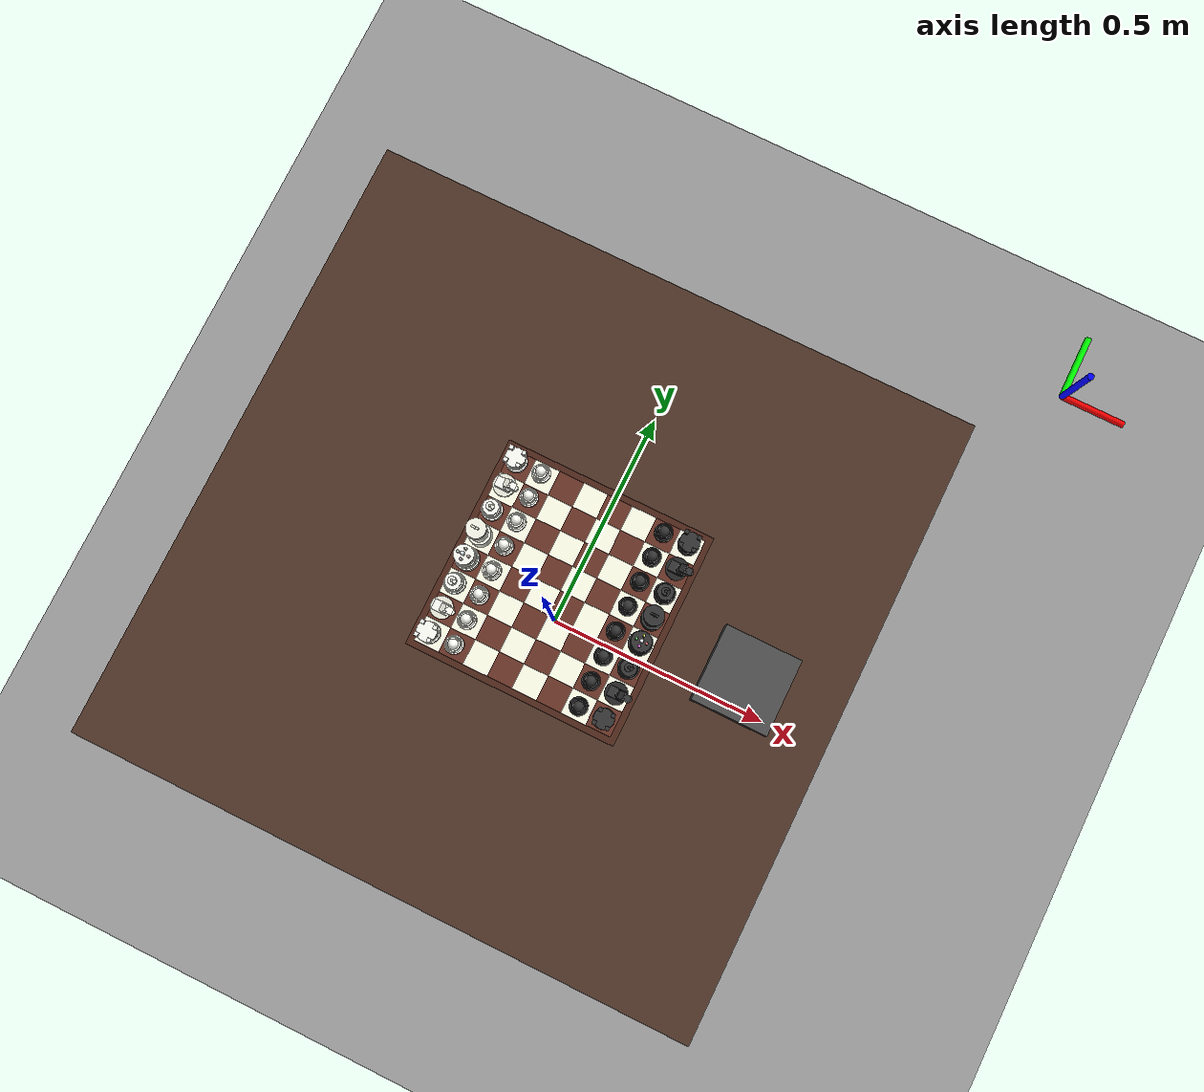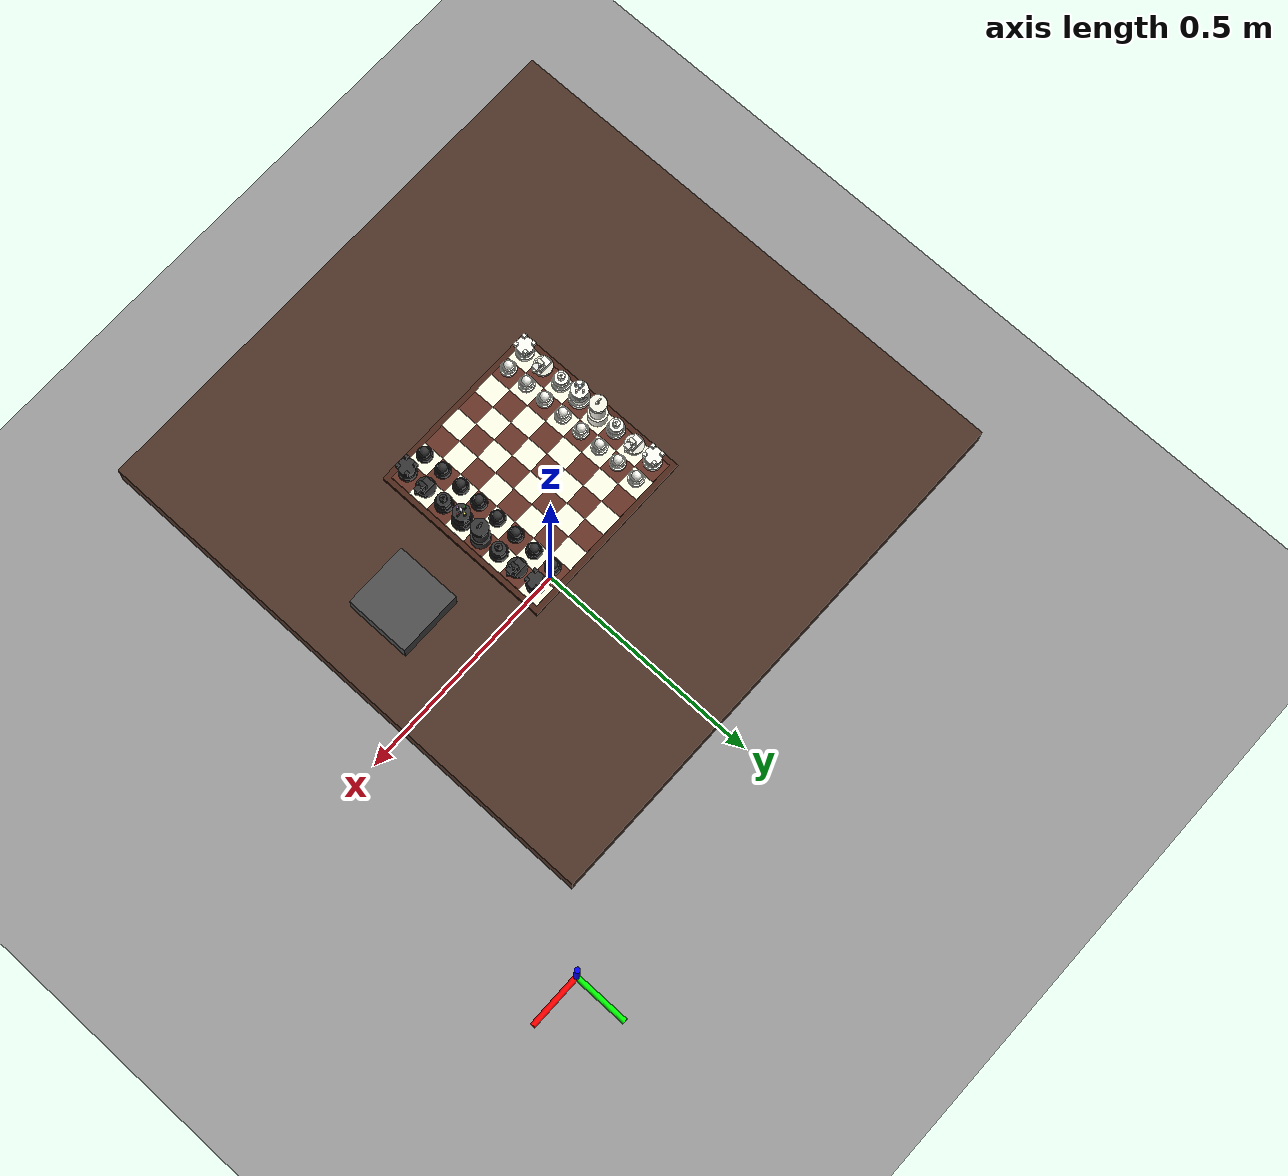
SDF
<?xml version="1.0" ?>
<sdf version="1.6">
  <world name="chess_table_world">

    <!-- Physics settings optimized for robotic manipulation -->
    <physics name="default_physics" default="0" type="ode">
      <gravity>0 0 -9.8066</gravity>
      <ode>
        <solver>
          <type>quick</type>
          <iters>200</iters>
          <sor>1.3</sor>
        </solver>
        <constraints>
          <cfm>0.00001</cfm>
          <erp>0.2</erp>
          <contact_max_correcting_vel>100</contact_max_correcting_vel>
          <contact_surface_layer>0.001</contact_surface_layer>
        </constraints>
      </ode>
      <max_step_size>0.001</max_step_size>
      <real_time_factor>1</real_time_factor>
      <real_time_update_rate>1000</real_time_update_rate>
    </physics>

    <!-- Scene settings -->
    <scene>
      <ambient>0.6 0.6 0.6</ambient>
      <background>0.8 0.8 0.9</background>
      <shadows>true</shadows>
    </scene>

    <!-- Sun light -->
    <light type="directional" name="sun">
      <cast_shadows>true</cast_shadows>
      <pose>0 0 10 0 0 0</pose>
      <diffuse>1.0 1.0 1.0 1</diffuse>
      <specular>0.2 0.2 0.2 1</specular>
      <attenuation>
        <range>1000</range>
        <constant>0.9</constant>
        <linear>0.01</linear>
        <quadratic>0.001</quadratic>
      </attenuation>
      <direction>-0.5 0.1 -0.9</direction>
    </light>

    <!-- Additional task lighting for precise work -->
    <light type="point" name="task_light_1">
      <pose>0.5 0.5 2.0 0 0 0</pose>
      <diffuse>0.8 0.8 0.8 1</diffuse>
      <specular>0.2 0.2 0.2 1</specular>
      <attenuation>
        <range>10</range>
        <constant>0.8</constant>
        <linear>0.01</linear>
        <quadratic>0.001</quadratic>
      </attenuation>
    </light>

    <light type="point" name="task_light_2">
      <pose>-0.5 -0.5 2.0 0 0 0</pose>
      <diffuse>0.8 0.8 0.8 1</diffuse>
      <specular>0.2 0.2 0.2 1</specular>
      <attenuation>
        <range>10</range>
        <constant>0.8</constant>
        <linear>0.01</linear>
        <quadratic>0.001</quadratic>
      </attenuation>
    </light>

    <!-- Ground plane -->
    <model name="ground_plane">
      <static>true</static>
      <link name="link">
        <collision name="collision">
          <geometry>
            <plane>
              <normal>0 0 1</normal>
              <size>20 20</size>
            </plane>
          </geometry>
          <surface>
            <friction>
              <ode>
                <mu>1.0</mu>
                <mu2>1.0</mu2>
              </ode>
            </friction>
          </surface>
        </collision>
        <visual name="visual">
          <geometry>
            <plane>
              <normal>0 0 1</normal>
              <size>20 20</size>
            </plane>
          </geometry>
          <material>
            <ambient>0.5 0.5 0.5 1</ambient>
            <diffuse>0.6 0.6 0.6 1</diffuse>
            <specular>0.1 0.1 0.1 1</specular>
          </material>
        </visual>
      </link>
    </model>

    <!-- Chess/Work Table -->
    <model name="chess_table_with_mount">
      <static>true</static>
      <pose>0 0 0.4 0 0 0</pose>

      <!-- Table top -->
      <link name="table_top">
        <pose>0 0 0.375 0 0 0</pose>
        <collision name="top_collision">
          <geometry>
            <box>
              <size>1.0 1.0 0.05</size>
            </box>
          </geometry>
          <surface>
            <friction>
              <ode>
                <mu>0.8</mu>
                <mu2>0.8</mu2>
              </ode>
            </friction>
          </surface>
        </collision>
        <visual name="top_visual">
          <geometry>
            <box>
              <size>1.0 1.0 0.05</size>
            </box>
          </geometry>
          <material>
            <ambient>0.2 0.15 0.1 1</ambient>
            <diffuse>0.3 0.2 0.15 1</diffuse>
            <specular>0.1 0.05 0.02 1</specular>
          </material>
        </visual>
      </link>

      <!-- Robot mounting platform - positioned for optimal reach -->
      <link name="robot_mount_platform">
        <!-- Position optimized for chess board reach -->
        <pose>0.35 0.0 0.4025 0 0 0</pose>

        <!-- Base mounting plate -->
        <collision name="mount_base_collision">
          <geometry>
            <box>
              <size>0.12 0.12 0.01</size>
            </box>
          </geometry>
          <surface>
            <friction>
              <ode>
                <mu>10.0</mu>
                <mu2>10.0</mu2>
              </ode>
            </friction>
            <contact>
              <ode>
                <soft_cfm>0.00001</soft_cfm>
                <soft_erp>0.2</soft_erp>
                <kp>10000000</kp>
                <kd>1000</kd>
                <max_vel>0.001</max_vel>
                <min_depth>0.0001</min_depth>
              </ode>
            </contact>
          </surface>
        </collision>
        <visual name="mount_base_visual">
          <pose>0 0 0.01 0 0 0</pose>  <!-- Offset downward to extend above -->
          <geometry>
            <box>
              <size>0.12 0.12 0.05</size>
            </box>
          </geometry>
          <material>
            <ambient>0.2 0.2 0.2 1</ambient>
            <diffuse>0.3 0.3 0.3 1</diffuse>
            <specular>0.1 0.1 0.1 1</specular>
          </material>
        </visual>

        <!-- Mounting holes representation -->
        <visual name="mount_hole_1">
          <pose>0.04 0.04 0.0025 0 0 0</pose>
          <geometry>
            <cylinder>
              <radius>0.003</radius>
              <length>0.005</length>
            </cylinder>
          </geometry>
          <material>
            <ambient>0.1 0.1 0.1 1</ambient>
            <diffuse>0.1 0.1 0.1 1</diffuse>
          </material>
        </visual>

        <visual name="mount_hole_2">
          <pose>-0.04 0.04 0.0025 0 0 0</pose>
          <geometry>
            <cylinder>
              <radius>0.003</radius>
              <length>0.005</length>
            </cylinder>
          </geometry>
          <material>
            <ambient>0.1 0.1 0.1 1</ambient>
            <diffuse>0.1 0.1 0.1 1</diffuse>
          </material>
        </visual>

        <visual name="mount_hole_3">
          <pose>0.04 -0.04 0.0025 0 0 0</pose>
          <geometry>
            <cylinder>
              <radius>0.003</radius>
              <length>0.005</length>
            </cylinder>
          </geometry>
          <material>
            <ambient>0.1 0.1 0.1 1</ambient>
            <diffuse>0.1 0.1 0.1 1</diffuse>
          </material>
        </visual>

        <visual name="mount_hole_4">
          <pose>-0.04 -0.04 0.0025 0 0 0</pose>
          <geometry>
            <cylinder>
              <radius>0.003</radius>
              <length>0.005</length>
            </cylinder>
          </geometry>
          <material>
            <ambient>0.1 0.1 0.1 1</ambient>
            <diffuse>0.1 0.1 0.1 1</diffuse>
          </material>
        </visual>
      </link>

      <!-- Table legs -->
      <link name="leg_1">
        <pose>0.4 0.4 0.175 0 0 0</pose>
        <collision name="leg1_collision">
          <geometry>
            <box>
              <size>0.05 0.05 0.35</size>
            </box>
          </geometry>
        </collision>
        <visual name="leg1_visual">
          <geometry>
            <box>
              <size>0.05 0.05 0.35</size>
            </box>
          </geometry>
          <material>
            <ambient>0.15 0.1 0.08 1</ambient>
            <diffuse>0.25 0.15 0.12 1</diffuse>
          </material>
        </visual>
      </link>

      <link name="leg_2">
        <pose>-0.4 0.4 0.175 0 0 0</pose>
        <collision name="leg2_collision">
          <geometry>
            <box>
              <size>0.05 0.05 0.35</size>
            </box>
          </geometry>
        </collision>
        <visual name="leg2_visual">
          <geometry>
            <box>
              <size>0.05 0.05 0.35</size>
            </box>
          </geometry>
          <material>
            <ambient>0.15 0.1 0.08 1</ambient>
            <diffuse>0.25 0.15 0.12 1</diffuse>
          </material>
        </visual>
      </link>

      <link name="leg_3">
        <pose>0.4 -0.4 0.175 0 0 0</pose>
        <collision name="leg3_collision">
          <geometry>
            <box>
              <size>0.05 0.05 0.35</size>
            </box>
          </geometry>
        </collision>
        <visual name="leg3_visual">
          <geometry>
            <box>
              <size>0.05 0.05 0.35</size>
            </box>
          </geometry>
          <material>
            <ambient>0.15 0.1 0.08 1</ambient>
            <diffuse>0.25 0.15 0.12 1</diffuse>
          </material>
        </visual>
      </link>

      <link name="leg_4">
        <pose>-0.4 -0.4 0.175 0 0 0</pose>
        <collision name="leg4_collision">
          <geometry>
            <box>
              <size>0.05 0.05 0.35</size>
            </box>
          </geometry>
        </collision>
        <visual name="leg4_visual">
          <geometry>
            <box>
              <size>0.05 0.05 0.35</size>
            </box>
          </geometry>
          <material>
            <ambient>0.15 0.1 0.08 1</ambient>
            <diffuse>0.25 0.15 0.12 1</diffuse>
          </material>
        </visual>
      </link>

      <!-- Fixed joints to connect everything -->
      <joint name="leg1_joint" type="fixed">
        <parent>table_top</parent>
        <child>leg_1</child>
      </joint>
      <joint name="leg2_joint" type="fixed">
        <parent>table_top</parent>
        <child>leg_2</child>
      </joint>
      <joint name="leg3_joint" type="fixed">
        <parent>table_top</parent>
        <child>leg_3</child>
      </joint>
      <joint name="leg4_joint" type="fixed">
        <parent>table_top</parent>
        <child>leg_4</child>
      </joint>
      <joint name="mount_joint" type="fixed">
        <parent>table_top</parent>
        <child>robot_mount_platform</child>
      </joint>
    </model>

    <!-- Chess Board -->
    <model name="chess_board">
      <static>true</static>
      <pose>0.05 0 0.8005 0 0 0</pose>

      <!-- Board frame -->
      <link name="board_frame">
        <collision name="frame_collision">
          <geometry>
            <box>
              <size>0.34 0.34 0.015</size>
            </box>
          </geometry>
        </collision>
        <visual name="frame_visual">
          <geometry>
            <box>
              <size>0.34 0.34 0.015</size>
            </box>
          </geometry>
          <material>
            <ambient>0.2 0.1 0.05 1</ambient>
            <diffuse>0.3 0.15 0.1 1</diffuse>
            <specular>0.2 0.1 0.05 1</specular>
          </material>
        </visual>
      </link>

      <!-- Rank 1 (a1-h1) -->
      <link name="square_a1">
        <pose>-0.140 -0.140 0.008 0 0 0</pose>
        <visual name="a1_visual">
          <geometry><box><size>0.04 0.04 0.001</size></box></geometry>
          <material><ambient>0.95 0.95 0.85 1</ambient><diffuse>0.98 0.98 0.9 1</diffuse><specular>0.1 0.1 0.1 1</specular></material>
        </visual>
      </link>
      <link name="square_b1">
        <pose>-0.140 -0.100 0.008 0 0 0</pose>
        <visual name="b1_visual">
          <geometry><box><size>0.04 0.04 0.001</size></box></geometry>
          <material><ambient>0.3 0.15 0.1 1</ambient><diffuse>0.4 0.2 0.15 1</diffuse><specular>0.1 0.1 0.1 1</specular></material>
        </visual>
      </link>
      <link name="square_c1">
        <pose>-0.140 -0.060 0.008 0 0 0</pose>
        <visual name="c1_visual">
          <geometry><box><size>0.04 0.04 0.001</size></box></geometry>
          <material><ambient>0.95 0.95 0.85 1</ambient><diffuse>0.98 0.98 0.9 1</diffuse><specular>0.1 0.1 0.1 1</specular></material>
        </visual>
      </link>
      <link name="square_d1">
        <pose>-0.140 -0.020 0.008 0 0 0</pose>
        <visual name="d1_visual">
          <geometry><box><size>0.04 0.04 0.001</size></box></geometry>
          <material><ambient>0.3 0.15 0.1 1</ambient><diffuse>0.4 0.2 0.15 1</diffuse><specular>0.1 0.1 0.1 1</specular></material>
        </visual>
      </link>
      <link name="square_e1">
        <pose>-0.140 0.020 0.008 0 0 0</pose>
        <visual name="e1_visual">
          <geometry><box><size>0.04 0.04 0.001</size></box></geometry>
          <material><ambient>0.95 0.95 0.85 1</ambient><diffuse>0.98 0.98 0.9 1</diffuse><specular>0.1 0.1 0.1 1</specular></material>
        </visual>
      </link>
      <link name="square_f1">
        <pose>-0.140 0.060 0.008 0 0 0</pose>
        <visual name="f1_visual">
          <geometry><box><size>0.04 0.04 0.001</size></box></geometry>
          <material><ambient>0.3 0.15 0.1 1</ambient><diffuse>0.4 0.2 0.15 1</diffuse><specular>0.1 0.1 0.1 1</specular></material>
        </visual>
      </link>
      <link name="square_g1">
        <pose>-0.140 0.100 0.008 0 0 0</pose>
        <visual name="g1_visual">
          <geometry><box><size>0.04 0.04 0.001</size></box></geometry>
          <material><ambient>0.95 0.95 0.85 1</ambient><diffuse>0.98 0.98 0.9 1</diffuse><specular>0.1 0.1 0.1 1</specular></material>
        </visual>
      </link>
      <link name="square_h1">
        <pose>-0.140 0.140 0.008 0 0 0</pose>
        <visual name="h1_visual">
          <geometry><box><size>0.04 0.04 0.001</size></box></geometry>
          <material><ambient>0.3 0.15 0.1 1</ambient><diffuse>0.4 0.2 0.15 1</diffuse><specular>0.1 0.1 0.1 1</specular></material>
        </visual>
      </link>

      <!-- Rank 2 (a2-h2) -->
      <link name="square_a2">
        <pose>-0.100 -0.140 0.008 0 0 0</pose>
        <visual name="a2_visual">
          <geometry><box><size>0.04 0.04 0.001</size></box></geometry>
          <material><ambient>0.3 0.15 0.1 1</ambient><diffuse>0.4 0.2 0.15 1</diffuse><specular>0.1 0.1 0.1 1</specular></material>
        </visual>
      </link>
      <link name="square_b2">
        <pose>-0.100 -0.100 0.008 0 0 0</pose>
        <visual name="b2_visual">
          <geometry><box><size>0.04 0.04 0.001</size></box></geometry>
          <material><ambient>0.95 0.95 0.85 1</ambient><diffuse>0.98 0.98 0.9 1</diffuse><specular>0.1 0.1 0.1 1</specular></material>
        </visual>
      </link>
      <link name="square_c2">
        <pose>-0.100 -0.060 0.008 0 0 0</pose>
        <visual name="c2_visual">
          <geometry><box><size>0.04 0.04 0.001</size></box></geometry>
          <material><ambient>0.3 0.15 0.1 1</ambient><diffuse>0.4 0.2 0.15 1</diffuse><specular>0.1 0.1 0.1 1</specular></material>
        </visual>
      </link>
      <link name="square_d2">
        <pose>-0.100 -0.020 0.008 0 0 0</pose>
        <visual name="d2_visual">
          <geometry><box><size>0.04 0.04 0.001</size></box></geometry>
          <material><ambient>0.95 0.95 0.85 1</ambient><diffuse>0.98 0.98 0.9 1</diffuse><specular>0.1 0.1 0.1 1</specular></material>
        </visual>
      </link>
      <link name="square_e2">
        <pose>-0.100 0.020 0.008 0 0 0</pose>
        <visual name="e2_visual">
          <geometry><box><size>0.04 0.04 0.001</size></box></geometry>
          <material><ambient>0.3 0.15 0.1 1</ambient><diffuse>0.4 0.2 0.15 1</diffuse><specular>0.1 0.1 0.1 1</specular></material>
        </visual>
      </link>
      <link name="square_f2">
        <pose>-0.100 0.060 0.008 0 0 0</pose>
        <visual name="f2_visual">
          <geometry><box><size>0.04 0.04 0.001</size></box></geometry>
          <material><ambient>0.95 0.95 0.85 1</ambient><diffuse>0.98 0.98 0.9 1</diffuse><specular>0.1 0.1 0.1 1</specular></material>
        </visual>
      </link>
      <link name="square_g2">
        <pose>-0.100 0.100 0.008 0 0 0</pose>
        <visual name="g2_visual">
          <geometry><box><size>0.04 0.04 0.001</size></box></geometry>
          <material><ambient>0.3 0.15 0.1 1</ambient><diffuse>0.4 0.2 0.15 1</diffuse><specular>0.1 0.1 0.1 1</specular></material>
        </visual>
      </link>
      <link name="square_h2">
        <pose>-0.100 0.140 0.008 0 0 0</pose>
        <visual name="h2_visual">
          <geometry><box><size>0.04 0.04 0.001</size></box></geometry>
          <material><ambient>0.95 0.95 0.85 1</ambient><diffuse>0.98 0.98 0.9 1</diffuse><specular>0.1 0.1 0.1 1</specular></material>
        </visual>
      </link>

      <!-- Rank 3 (a3-h3) -->
      <link name="square_a3">
        <pose>-0.060 -0.140 0.008 0 0 0</pose>
        <visual name="a3_visual">
          <geometry><box><size>0.04 0.04 0.001</size></box></geometry>
          <material><ambient>0.95 0.95 0.85 1</ambient><diffuse>0.98 0.98 0.9 1</diffuse><specular>0.1 0.1 0.1 1</specular></material>
        </visual>
      </link>
      <link name="square_b3">
        <pose>-0.060 -0.100 0.008 0 0 0</pose>
        <visual name="b3_visual">
          <geometry><box><size>0.04 0.04 0.001</size></box></geometry>
          <material><ambient>0.3 0.15 0.1 1</ambient><diffuse>0.4 0.2 0.15 1</diffuse><specular>0.1 0.1 0.1 1</specular></material>
        </visual>
      </link>
      <link name="square_c3">
        <pose>-0.060 -0.060 0.008 0 0 0</pose>
        <visual name="c3_visual">
          <geometry><box><size>0.04 0.04 0.001</size></box></geometry>
          <material><ambient>0.95 0.95 0.85 1</ambient><diffuse>0.98 0.98 0.9 1</diffuse><specular>0.1 0.1 0.1 1</specular></material>
        </visual>
      </link>
      <link name="square_d3">
        <pose>-0.060 -0.020 0.008 0 0 0</pose>
        <visual name="d3_visual">
          <geometry><box><size>0.04 0.04 0.001</size></box></geometry>
          <material><ambient>0.3 0.15 0.1 1</ambient><diffuse>0.4 0.2 0.15 1</diffuse><specular>0.1 0.1 0.1 1</specular></material>
        </visual>
      </link>
      <link name="square_e3">
        <pose>-0.060 0.020 0.008 0 0 0</pose>
        <visual name="e3_visual">
          <geometry><box><size>0.04 0.04 0.001</size></box></geometry>
          <material><ambient>0.95 0.95 0.85 1</ambient><diffuse>0.98 0.98 0.9 1</diffuse><specular>0.1 0.1 0.1 1</specular></material>
        </visual>
      </link>
      <link name="square_f3">
        <pose>-0.060 0.060 0.008 0 0 0</pose>
        <visual name="f3_visual">
          <geometry><box><size>0.04 0.04 0.001</size></box></geometry>
          <material><ambient>0.3 0.15 0.1 1</ambient><diffuse>0.4 0.2 0.15 1</diffuse><specular>0.1 0.1 0.1 1</specular></material>
        </visual>
      </link>
      <link name="square_g3">
        <pose>-0.060 0.100 0.008 0 0 0</pose>
        <visual name="g3_visual">
          <geometry><box><size>0.04 0.04 0.001</size></box></geometry>
          <material><ambient>0.95 0.95 0.85 1</ambient><diffuse>0.98 0.98 0.9 1</diffuse><specular>0.1 0.1 0.1 1</specular></material>
        </visual>
      </link>
      <link name="square_h3">
        <pose>-0.060 0.140 0.008 0 0 0</pose>
        <visual name="h3_visual">
          <geometry><box><size>0.04 0.04 0.001</size></box></geometry>
          <material><ambient>0.3 0.15 0.1 1</ambient><diffuse>0.4 0.2 0.15 1</diffuse><specular>0.1 0.1 0.1 1</specular></material>
        </visual>
      </link>

      <!-- Rank 4 (a4-h4) -->
      <link name="square_a4">
        <pose>-0.020 -0.140 0.008 0 0 0</pose>
        <visual name="a4_visual">
          <geometry><box><size>0.04 0.04 0.001</size></box></geometry>
          <material><ambient>0.3 0.15 0.1 1</ambient><diffuse>0.4 0.2 0.15 1</diffuse><specular>0.1 0.1 0.1 1</specular></material>
        </visual>
      </link>
      <link name="square_b4">
        <pose>-0.020 -0.100 0.008 0 0 0</pose>
        <visual name="b4_visual">
          <geometry><box><size>0.04 0.04 0.001</size></box></geometry>
          <material><ambient>0.95 0.95 0.85 1</ambient><diffuse>0.98 0.98 0.9 1</diffuse><specular>0.1 0.1 0.1 1</specular></material>
        </visual>
      </link>
      <link name="square_c4">
        <pose>-0.020 -0.060 0.008 0 0 0</pose>
        <visual name="c4_visual">
          <geometry><box><size>0.04 0.04 0.001</size></box></geometry>
          <material><ambient>0.3 0.15 0.1 1</ambient><diffuse>0.4 0.2 0.15 1</diffuse><specular>0.1 0.1 0.1 1</specular></material>
        </visual>
      </link>
      <link name="square_d4">
        <pose>-0.020 -0.020 0.008 0 0 0</pose>
        <visual name="d4_visual">
          <geometry><box><size>0.04 0.04 0.001</size></box></geometry>
          <material><ambient>0.95 0.95 0.85 1</ambient><diffuse>0.98 0.98 0.9 1</diffuse><specular>0.1 0.1 0.1 1</specular></material>
        </visual>
      </link>
      <link name="square_e4">
        <pose>-0.020 0.020 0.008 0 0 0</pose>
        <visual name="e4_visual">
          <geometry><box><size>0.04 0.04 0.001</size></box></geometry>
          <material><ambient>0.3 0.15 0.1 1</ambient><diffuse>0.4 0.2 0.15 1</diffuse><specular>0.1 0.1 0.1 1</specular></material>
        </visual>
      </link>
      <link name="square_f4">
        <pose>-0.020 0.060 0.008 0 0 0</pose>
        <visual name="f4_visual">
          <geometry><box><size>0.04 0.04 0.001</size></box></geometry>
          <material><ambient>0.95 0.95 0.85 1</ambient><diffuse>0.98 0.98 0.9 1</diffuse><specular>0.1 0.1 0.1 1</specular></material>
        </visual>
      </link>
      <link name="square_g4">
        <pose>-0.020 0.100 0.008 0 0 0</pose>
        <visual name="g4_visual">
          <geometry><box><size>0.04 0.04 0.001</size></box></geometry>
          <material><ambient>0.3 0.15 0.1 1</ambient><diffuse>0.4 0.2 0.15 1</diffuse><specular>0.1 0.1 0.1 1</specular></material>
        </visual>
      </link>
      <link name="square_h4">
        <pose>-0.020 0.140 0.008 0 0 0</pose>
        <visual name="h4_visual">
          <geometry><box><size>0.04 0.04 0.001</size></box></geometry>
          <material><ambient>0.95 0.95 0.85 1</ambient><diffuse>0.98 0.98 0.9 1</diffuse><specular>0.1 0.1 0.1 1</specular></material>
        </visual>
      </link>

      <!-- Rank 5 (a5-h5) -->
      <link name="square_a5">
        <pose>0.020 -0.140 0.008 0 0 0</pose>
        <visual name="a5_visual">
          <geometry><box><size>0.04 0.04 0.001</size></box></geometry>
          <material><ambient>0.95 0.95 0.85 1</ambient><diffuse>0.98 0.98 0.9 1</diffuse><specular>0.1 0.1 0.1 1</specular></material>
        </visual>
      </link>
      <link name="square_b5">
        <pose>0.020 -0.100 0.008 0 0 0</pose>
        <visual name="b5_visual">
          <geometry><box><size>0.04 0.04 0.001</size></box></geometry>
          <material><ambient>0.3 0.15 0.1 1</ambient><diffuse>0.4 0.2 0.15 1</diffuse><specular>0.1 0.1 0.1 1</specular></material>
        </visual>
      </link>
      <link name="square_c5">
        <pose>0.020 -0.060 0.008 0 0 0</pose>
        <visual name="c5_visual">
          <geometry><box><size>0.04 0.04 0.001</size></box></geometry>
          <material><ambient>0.95 0.95 0.85 1</ambient><diffuse>0.98 0.98 0.9 1</diffuse><specular>0.1 0.1 0.1 1</specular></material>
        </visual>
      </link>
      <link name="square_d5">
        <pose>0.020 -0.020 0.008 0 0 0</pose>
        <visual name="d5_visual">
          <geometry><box><size>0.04 0.04 0.001</size></box></geometry>
          <material><ambient>0.3 0.15 0.1 1</ambient><diffuse>0.4 0.2 0.15 1</diffuse><specular>0.1 0.1 0.1 1</specular></material>
        </visual>
      </link>
      <link name="square_e5">
        <pose>0.020 0.020 0.008 0 0 0</pose>
        <visual name="e5_visual">
          <geometry><box><size>0.04 0.04 0.001</size></box></geometry>
          <material><ambient>0.95 0.95 0.85 1</ambient><diffuse>0.98 0.98 0.9 1</diffuse><specular>0.1 0.1 0.1 1</specular></material>
        </visual>
      </link>
      <link name="square_f5">
        <pose>0.020 0.060 0.008 0 0 0</pose>
        <visual name="f5_visual">
          <geometry><box><size>0.04 0.04 0.001</size></box></geometry>
          <material><ambient>0.3 0.15 0.1 1</ambient><diffuse>0.4 0.2 0.15 1</diffuse><specular>0.1 0.1 0.1 1</specular></material>
        </visual>
      </link>
      <link name="square_g5">
        <pose>0.020 0.100 0.008 0 0 0</pose>
        <visual name="g5_visual">
          <geometry><box><size>0.04 0.04 0.001</size></box></geometry>
          <material><ambient>0.95 0.95 0.85 1</ambient><diffuse>0.98 0.98 0.9 1</diffuse><specular>0.1 0.1 0.1 1</specular></material>
        </visual>
      </link>
      <link name="square_h5">
        <pose>0.020 0.140 0.008 0 0 0</pose>
        <visual name="h5_visual">
          <geometry><box><size>0.04 0.04 0.001</size></box></geometry>
          <material><ambient>0.3 0.15 0.1 1</ambient><diffuse>0.4 0.2 0.15 1</diffuse><specular>0.1 0.1 0.1 1</specular></material>
        </visual>
      </link>

      <!-- Rank 6 (a6-h6) -->
      <link name="square_a6">
        <pose>0.060 -0.140 0.008 0 0 0</pose>
        <visual name="a6_visual">
          <geometry><box><size>0.04 0.04 0.001</size></box></geometry>
          <material><ambient>0.3 0.15 0.1 1</ambient><diffuse>0.4 0.2 0.15 1</diffuse><specular>0.1 0.1 0.1 1</specular></material>
        </visual>
      </link>
      <link name="square_b6">
        <pose>0.060 -0.100 0.008 0 0 0</pose>
        <visual name="b6_visual">
          <geometry><box><size>0.04 0.04 0.001</size></box></geometry>
          <material><ambient>0.95 0.95 0.85 1</ambient><diffuse>0.98 0.98 0.9 1</diffuse><specular>0.1 0.1 0.1 1</specular></material>
        </visual>
      </link>
      <link name="square_c6">
        <pose>0.060 -0.060 0.008 0 0 0</pose>
        <visual name="c6_visual">
          <geometry><box><size>0.04 0.04 0.001</size></box></geometry>
          <material><ambient>0.3 0.15 0.1 1</ambient><diffuse>0.4 0.2 0.15 1</diffuse><specular>0.1 0.1 0.1 1</specular></material>
        </visual>
      </link>
      <link name="square_d6">
        <pose>0.060 -0.020 0.008 0 0 0</pose>
        <visual name="d6_visual">
          <geometry><box><size>0.04 0.04 0.001</size></box></geometry>
          <material><ambient>0.95 0.95 0.85 1</ambient><diffuse>0.98 0.98 0.9 1</diffuse><specular>0.1 0.1 0.1 1</specular></material>
        </visual>
      </link>
      <link name="square_e6">
        <pose>0.060 0.020 0.008 0 0 0</pose>
        <visual name="e6_visual">
          <geometry><box><size>0.04 0.04 0.001</size></box></geometry>
          <material><ambient>0.3 0.15 0.1 1</ambient><diffuse>0.4 0.2 0.15 1</diffuse><specular>0.1 0.1 0.1 1</specular></material>
        </visual>
      </link>
      <link name="square_f6">
        <pose>0.060 0.060 0.008 0 0 0</pose>
        <visual name="f6_visual">
          <geometry><box><size>0.04 0.04 0.001</size></box></geometry>
          <material><ambient>0.95 0.95 0.85 1</ambient><diffuse>0.98 0.98 0.9 1</diffuse><specular>0.1 0.1 0.1 1</specular></material>
        </visual>
      </link>
      <link name="square_g6">
        <pose>0.060 0.100 0.008 0 0 0</pose>
        <visual name="g6_visual">
          <geometry><box><size>0.04 0.04 0.001</size></box></geometry>
          <material><ambient>0.3 0.15 0.1 1</ambient><diffuse>0.4 0.2 0.15 1</diffuse><specular>0.1 0.1 0.1 1</specular></material>
        </visual>
      </link>
      <link name="square_h6">
        <pose>0.060 0.140 0.008 0 0 0</pose>
        <visual name="h6_visual">
          <geometry><box><size>0.04 0.04 0.001</size></box></geometry>
          <material><ambient>0.95 0.95 0.85 1</ambient><diffuse>0.98 0.98 0.9 1</diffuse><specular>0.1 0.1 0.1 1</specular></material>
        </visual>
      </link>

      <!-- Rank 7 (a7-h7) -->
      <link name="square_a7">
        <pose>0.100 -0.140 0.008 0 0 0</pose>
        <visual name="a7_visual">
          <geometry><box><size>0.04 0.04 0.001</size></box></geometry>
          <material><ambient>0.95 0.95 0.85 1</ambient><diffuse>0.98 0.98 0.9 1</diffuse><specular>0.1 0.1 0.1 1</specular></material>
        </visual>
      </link>
      <link name="square_b7">
        <pose>0.100 -0.100 0.008 0 0 0</pose>
        <visual name="b7_visual">
          <geometry><box><size>0.04 0.04 0.001</size></box></geometry>
          <material><ambient>0.3 0.15 0.1 1</ambient><diffuse>0.4 0.2 0.15 1</diffuse><specular>0.1 0.1 0.1 1</specular></material>
        </visual>
      </link>
      <link name="square_c7">
        <pose>0.100 -0.060 0.008 0 0 0</pose>
        <visual name="c7_visual">
          <geometry><box><size>0.04 0.04 0.001</size></box></geometry>
          <material><ambient>0.95 0.95 0.85 1</ambient><diffuse>0.98 0.98 0.9 1</diffuse><specular>0.1 0.1 0.1 1</specular></material>
        </visual>
      </link>
      <link name="square_d7">
        <pose>0.100 -0.020 0.008 0 0 0</pose>
        <visual name="d7_visual">
          <geometry><box><size>0.04 0.04 0.001</size></box></geometry>
          <material><ambient>0.3 0.15 0.1 1</ambient><diffuse>0.4 0.2 0.15 1</diffuse><specular>0.1 0.1 0.1 1</specular></material>
        </visual>
      </link>
      <link name="square_e7">
        <pose>0.100 0.020 0.008 0 0 0</pose>
        <visual name="e7_visual">
          <geometry><box><size>0.04 0.04 0.001</size></box></geometry>
          <material><ambient>0.95 0.95 0.85 1</ambient><diffuse>0.98 0.98 0.9 1</diffuse><specular>0.1 0.1 0.1 1</specular></material>
        </visual>
      </link>
      <link name="square_f7">
        <pose>0.100 0.060 0.008 0 0 0</pose>
        <visual name="f7_visual">
          <geometry><box><size>0.04 0.04 0.001</size></box></geometry>
          <material><ambient>0.3 0.15 0.1 1</ambient><diffuse>0.4 0.2 0.15 1</diffuse><specular>0.1 0.1 0.1 1</specular></material>
        </visual>
      </link>
      <link name="square_g7">
        <pose>0.100 0.100 0.008 0 0 0</pose>
        <visual name="g7_visual">
          <geometry><box><size>0.04 0.04 0.001</size></box></geometry>
          <material><ambient>0.95 0.95 0.85 1</ambient><diffuse>0.98 0.98 0.9 1</diffuse><specular>0.1 0.1 0.1 1</specular></material>
        </visual>
      </link>
      <link name="square_h7">
        <pose>0.100 0.140 0.008 0 0 0</pose>
        <visual name="h7_visual">
          <geometry><box><size>0.04 0.04 0.001</size></box></geometry>
          <material><ambient>0.3 0.15 0.1 1</ambient><diffuse>0.4 0.2 0.15 1</diffuse><specular>0.1 0.1 0.1 1</specular></material>
        </visual>
      </link>

      <!-- Rank 8 (a8-h8) -->
      <link name="square_a8">
        <pose>0.140 -0.140 0.008 0 0 0</pose>
        <visual name="a8_visual">
          <geometry><box><size>0.04 0.04 0.001</size></box></geometry>
          <material><ambient>0.3 0.15 0.1 1</ambient><diffuse>0.4 0.2 0.15 1</diffuse><specular>0.1 0.1 0.1 1</specular></material>
        </visual>
      </link>
      <link name="square_b8">
        <pose>0.140 -0.100 0.008 0 0 0</pose>
        <visual name="b8_visual">
          <geometry><box><size>0.04 0.04 0.001</size></box></geometry>
          <material><ambient>0.95 0.95 0.85 1</ambient><diffuse>0.98 0.98 0.9 1</diffuse><specular>0.1 0.1 0.1 1</specular></material>
        </visual>
      </link>
      <link name="square_c8">
        <pose>0.140 -0.060 0.008 0 0 0</pose>
        <visual name="c8_visual">
          <geometry><box><size>0.04 0.04 0.001</size></box></geometry>
          <material><ambient>0.3 0.15 0.1 1</ambient><diffuse>0.4 0.2 0.15 1</diffuse><specular>0.1 0.1 0.1 1</specular></material>
        </visual>
      </link>
      <link name="square_d8">
        <pose>0.140 -0.020 0.008 0 0 0</pose>
        <visual name="d8_visual">
          <geometry><box><size>0.04 0.04 0.001</size></box></geometry>
          <material><ambient>0.95 0.95 0.85 1</ambient><diffuse>0.98 0.98 0.9 1</diffuse><specular>0.1 0.1 0.1 1</specular></material>
        </visual>
      </link>
      <link name="square_e8">
        <pose>0.140 0.020 0.008 0 0 0</pose>
        <visual name="e8_visual">
          <geometry><box><size>0.04 0.04 0.001</size></box></geometry>
          <material><ambient>0.3 0.15 0.1 1</ambient><diffuse>0.4 0.2 0.15 1</diffuse><specular>0.1 0.1 0.1 1</specular></material>
        </visual>
      </link>
      <link name="square_f8">
        <pose>0.140 0.060 0.008 0 0 0</pose>
        <visual name="f8_visual">
          <geometry><box><size>0.04 0.04 0.001</size></box></geometry>
          <material><ambient>0.95 0.95 0.85 1</ambient><diffuse>0.98 0.98 0.9 1</diffuse><specular>0.1 0.1 0.1 1</specular></material>
        </visual>
      </link>
      <link name="square_g8">
        <pose>0.140 0.100 0.008 0 0 0</pose>
        <visual name="g8_visual">
          <geometry><box><size>0.04 0.04 0.001</size></box></geometry>
          <material><ambient>0.3 0.15 0.1 1</ambient><diffuse>0.4 0.2 0.15 1</diffuse><specular>0.1 0.1 0.1 1</specular></material>
        </visual>
      </link>
      <link name="square_h8">
        <pose>0.140 0.140 0.008 0 0 0</pose>
        <visual name="h8_visual">
          <geometry><box><size>0.04 0.04 0.001</size></box></geometry>
          <material><ambient>0.95 0.95 0.85 1</ambient><diffuse>0.98 0.98 0.9 1</diffuse><specular>0.1 0.1 0.1 1</specular></material>
        </visual>
      </link>
    </model>

    <!-- White Pawns (row 2) -->
    <include>
      <uri>model://chess_pawn_white</uri>
      <pose>-0.05 -0.14 0.8315 0 0 0</pose>
      <name>white_pawn_a2</name>
    </include>
    <include>
      <uri>model://chess_pawn_white</uri>
      <pose>-0.05 -0.10 0.8315 0 0 0</pose>
      <name>white_pawn_b2</name>
    </include>
    <include>
      <uri>model://chess_pawn_white</uri>
      <pose>-0.05 -0.06 0.8315 0 0 0</pose>
      <name>white_pawn_c2</name>
    </include>
    <include>
      <uri>model://chess_pawn_white</uri>
      <pose>-0.05 -0.02 0.8315 0 0 0</pose>
      <name>white_pawn_d2</name>
    </include>
    <include>
      <uri>model://chess_pawn_white</uri>
      <pose>-0.05 0.02 0.8315 0 0 0</pose>
      <name>white_pawn_e2</name>
    </include>
    <include>
      <uri>model://chess_pawn_white</uri>
      <pose>-0.05 0.06 0.8315 0 0 0</pose>
      <name>white_pawn_f2</name>
    </include>
    <include>
      <uri>model://chess_pawn_white</uri>
      <pose>-0.05 0.10 0.8315 0 0 0</pose>
      <name>white_pawn_g2</name>
    </include>
    <include>
      <uri>model://chess_pawn_white</uri>
      <pose>-0.05 0.14 0.8315 0 0 0</pose>
      <name>white_pawn_h2</name>
    </include>

    <!-- White Back Pieces (row 1) -->
    <include>
      <uri>model://chess_rook_white</uri>
      <pose>-0.09 -0.14 0.8315 0 0 0</pose>
      <name>white_rook_a1</name>
    </include>
    <include>
      <uri>model://chess_knight_white</uri>
      <pose>-0.09 -0.10 0.8315 0 0 0</pose>
      <name>white_knight_b1</name>
    </include>
    <include>
      <uri>model://chess_bishop_white</uri>
      <pose>-0.09 -0.06 0.8315 0 0 0</pose>
      <name>white_bishop_c1</name>
    </include>
    <include>
      <uri>model://chess_queen_white</uri>
      <pose>-0.09 -0.02 0.8315 0 0 0</pose>
      <name>white_queen_d1</name>
    </include>
    <include>
      <uri>model://chess_king_white</uri>
      <pose>-0.09 0.02 0.8315 0 0 0</pose>
      <name>white_king_e1</name>
    </include>
    <include>
      <uri>model://chess_bishop_white</uri>
      <pose>-0.09 0.06 0.8315 0 0 0</pose>
      <name>white_bishop_f1</name>
    </include>
    <include>
      <uri>model://chess_knight_white</uri>
      <pose>-0.09 0.10 0.8315 0 0 0</pose>
      <name>white_knight_g1</name>
    </include>
    <include>
      <uri>model://chess_rook_white</uri>
      <pose>-0.09 0.14 0.8315 0 0 0</pose>
      <name>white_rook_h1</name>
    </include>

    <!-- Black Pawns (row 7) -->
    <include>
      <uri>model://chess_pawn_black</uri>
      <pose>0.15 -0.14 0.8315 0 0 0</pose>
      <name>black_pawn_a7</name>
    </include>
    <include>
      <uri>model://chess_pawn_black</uri>
      <pose>0.15 -0.10 0.8315 0 0 0</pose>
      <name>black_pawn_b7</name>
    </include>
    <include>
      <uri>model://chess_pawn_black</uri>
      <pose>0.15 -0.06 0.8315 0 0 0</pose>
      <name>black_pawn_c7</name>
    </include>
    <include>
      <uri>model://chess_pawn_black</uri>
      <pose>0.15 -0.02 0.8315 0 0 0</pose>
      <name>black_pawn_d7</name>
    </include>
    <include>
      <uri>model://chess_pawn_black</uri>
      <pose>0.15 0.02 0.8315 0 0 0</pose>
      <name>black_pawn_e7</name>
    </include>
    <include>
      <uri>model://chess_pawn_black</uri>
      <pose>0.15 0.06 0.8315 0 0 0</pose>
      <name>black_pawn_f7</name>
    </include>
    <include>
      <uri>model://chess_pawn_black</uri>
      <pose>0.15 0.10 0.8315 0 0 0</pose>
      <name>black_pawn_g7</name>
    </include>
    <include>
      <uri>model://chess_pawn_black</uri>
      <pose>0.15 0.14 0.8315 0 0 0</pose>
      <name>black_pawn_h7</name>
    </include>

    <!-- Black Back Pieces (row 8) -->
    <include>
      <uri>model://chess_rook_black</uri>
      <pose>0.19 -0.14 0.8315 0 0 0</pose>
      <name>black_rook_a8</name>
    </include>
    <include>
      <uri>model://chess_knight_black</uri>
      <pose>0.19 -0.10 0.8315 0 0 0</pose>
      <name>black_knight_b8</name>
    </include>
    <include>
      <uri>model://chess_bishop_black</uri>
      <pose>0.19 -0.06 0.8315 0 0 0</pose>
      <name>black_bishop_c8</name>
    </include>
    <include>
      <uri>model://chess_queen_black</uri>
      <pose>0.19 -0.02 0.8315 0 0 0</pose>
      <name>black_queen_d8</name>
    </include>
    <include>
      <uri>model://chess_king_black</uri>
      <pose>0.19 0.02 0.8315 0 0 0</pose>
      <name>black_king_e8</name>
    </include>
    <include>
      <uri>model://chess_bishop_black</uri>
      <pose>0.19 0.06 0.8315 0 0 0</pose>
      <name>black_bishop_f8</name>
    </include>
    <include>
      <uri>model://chess_knight_black</uri>
      <pose>0.19 0.10 0.8315 0 0 0</pose>
      <name>black_knight_g8</name>
    </include>
    <include>
      <uri>model://chess_rook_black</uri>
      <pose>0.19 0.14 0.8315 0 0 0</pose>
      <name>black_rook_h8</name>
    </include>

    <!-- Coordinate frame markers -->
    <model name="coordinate_markers">
      <static>true</static>
      <pose>0.6 0.6 0.8 0 0 0</pose>

      <link name="x_axis">
        <visual name="x_visual">
          <geometry>
            <cylinder>
              <radius>0.005</radius>
              <length>0.1</length>
            </cylinder>
          </geometry>
          <pose>0.05 0 0 0 1.5708 0</pose>
          <material>
            <ambient>1 0 0 1</ambient>
            <diffuse>1 0 0 1</diffuse>
          </material>
        </visual>
      </link>

      <link name="y_axis">
        <visual name="y_visual">
          <geometry>
            <cylinder>
              <radius>0.005</radius>
              <length>0.1</length>
            </cylinder>
          </geometry>
          <pose>0 0.05 0 -1.5708 0 0</pose>
          <material>
            <ambient>0 1 0 1</ambient>
            <diffuse>0 1 0 1</diffuse>
          </material>
        </visual>
      </link>

      <link name="z_axis">
        <visual name="z_visual">
          <geometry>
            <cylinder>
              <radius>0.005</radius>
              <length>0.1</length>
            </cylinder>
          </geometry>
          <pose>0 0 0.05 0 0 0</pose>
          <material>
            <ambient>0 0 1 1</ambient>
            <diffuse>0 0 1 1</diffuse>
          </material>
        </visual>
      </link>
    </model>

  </world>
</sdf>

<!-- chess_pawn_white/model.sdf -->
<sdf version="1.6">
  <model name="chess_pawn_white">
    <link name="link">
      <pose>0 0 0 0 0 0</pose>

      <inertial>
        <mass>0.05</mass>
        <pose>0 0 0.012 0 0 0</pose>
        <inertia>
          <ixx>0.00001</ixx>
          <ixy>0</ixy>
          <ixz>0</ixz>
          <iyy>0.00001</iyy>
          <iyz>0</iyz>
          <izz>0.00001</izz>
        </inertia>
      </inertial>

      <!-- Base platform -->
      <collision name="base_collision">
        <pose>0 0 0.003 0 0 0</pose>
        <geometry>
          <cylinder>
            <radius>0.014</radius>
            <length>0.006</length>
          </cylinder>
        </geometry>
        <surface>
          <friction>
            <ode>
              <mu>0.8</mu>
              <mu2>0.8</mu2>
            </ode>
          </friction>
          <bounce>
            <restitution_coefficient>0.1</restitution_coefficient>
          </bounce>
        </surface>
      </collision>

      <!-- Main body (narrower waist) -->
      <collision name="body_collision">
        <pose>0 0 0.012 0 0 0</pose>
        <geometry>
          <cylinder>
            <radius>0.010</radius>
            <length>0.012</length>
          </cylinder>
        </geometry>
      </collision>

      <!-- Rounded head -->
      <collision name="head_collision">
        <pose>0 0 0.020 0 0 0</pose>
        <geometry>
          <sphere>
            <radius>0.008</radius>
          </sphere>
        </geometry>
      </collision>

      <!-- Visuals for detailed appearance -->
      <visual name="base_visual">
        <pose>0 0 0.003 0 0 0</pose>
        <geometry>
          <cylinder>
            <radius>0.014</radius>
            <length>0.006</length>
          </cylinder>
        </geometry>
        <material>
          <ambient>0.95 0.95 0.9 1</ambient>
          <diffuse>0.98 0.98 0.95 1</diffuse>
          <specular>0.4 0.4 0.4 1</specular>
        </material>
      </visual>

      <visual name="body_visual">
        <pose>0 0 0.012 0 0 0</pose>
        <geometry>
          <cylinder>
            <radius>0.010</radius>
            <length>0.012</length>
          </cylinder>
        </geometry>
        <material>
          <ambient>0.95 0.95 0.9 1</ambient>
          <diffuse>0.98 0.98 0.95 1</diffuse>
          <specular>0.4 0.4 0.4 1</specular>
        </material>
      </visual>

      <visual name="head_visual">
        <pose>0 0 0.020 0 0 0</pose>
        <geometry>
          <sphere>
            <radius>0.008</radius>
          </sphere>
        </geometry>
        <material>
          <ambient>0.95 0.95 0.9 1</ambient>
          <diffuse>0.98 0.98 0.95 1</diffuse>
          <specular>0.5 0.5 0.5 1</specular>
        </material>
      </visual>

      <!-- Decorative ring for visual distinction -->
      <visual name="ring_visual">
        <pose>0 0 0.009 0 0 0</pose>
        <geometry>
          <cylinder>
            <radius>0.012</radius>
            <length>0.001</length>
          </cylinder>
        </geometry>
        <material>
          <ambient>0.85 0.85 0.8 1</ambient>
          <diffuse>0.9 0.9 0.85 1</diffuse>
          <specular>0.3 0.3 0.3 1</specular>
        </material>
      </visual>
    </link>
  </model>
</sdf>

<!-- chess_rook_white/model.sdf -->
<sdf version="1.6">
  <model name="chess_rook_white">
    <link name="link">
      <pose>0 0 0 0 0 0</pose>

      <inertial>
        <mass>0.08</mass>
        <pose>0 0 0.015 0 0 0</pose>
        <inertia>
          <ixx>0.00002</ixx>
          <ixy>0</ixy>
          <ixz>0</ixz>
          <iyy>0.00002</iyy>
          <iyz>0</iyz>
          <izz>0.00001</izz>
        </inertia>
      </inertial>

      <!-- Base -->
      <collision name="base_collision">
        <pose>0 0 0.004 0 0 0</pose>
        <geometry>
          <cylinder>
            <radius>0.016</radius>
            <length>0.008</length>
          </cylinder>
        </geometry>
        <surface>
          <friction>
            <ode>
              <mu>0.8</mu>
              <mu2>0.8</mu2>
            </ode>
          </friction>
          <bounce>
            <restitution_coefficient>0.1</restitution_coefficient>
          </bounce>
        </surface>
      </collision>

      <!-- Main tower body -->
      <collision name="tower_collision">
        <pose>0 0 0.018 0 0 0</pose>
        <geometry>
          <cylinder>
            <radius>0.013</radius>
            <length>0.020</length>
          </cylinder>
        </geometry>
      </collision>

      <!-- Castle top (battlements base) -->
      <collision name="castle_base_collision">
        <pose>0 0 0.030 0 0 0</pose>
        <geometry>
          <cylinder>
            <radius>0.015</radius>
            <length>0.006</length>
          </cylinder>
        </geometry>
      </collision>

      <!-- Battlements (4 corner towers) -->
      <collision name="battlement_1">
        <pose>0.010 0.010 0.036 0 0 0</pose>
        <geometry>
          <box>
            <size>0.006 0.006 0.012</size>
          </box>
        </geometry>
      </collision>

      <collision name="battlement_2">
        <pose>-0.010 0.010 0.036 0 0 0</pose>
        <geometry>
          <box>
            <size>0.006 0.006 0.012</size>
          </box>
        </geometry>
      </collision>

      <collision name="battlement_3">
        <pose>0.010 -0.010 0.036 0 0 0</pose>
        <geometry>
          <box>
            <size>0.006 0.006 0.012</size>
          </box>
        </geometry>
      </collision>

      <collision name="battlement_4">
        <pose>-0.010 -0.010 0.036 0 0 0</pose>
        <geometry>
          <box>
            <size>0.006 0.006 0.012</size>
          </box>
        </geometry>
      </collision>

      <!-- Visuals -->
      <visual name="base_visual">
        <pose>0 0 0.004 0 0 0</pose>
        <geometry>
          <cylinder>
            <radius>0.016</radius>
            <length>0.008</length>
          </cylinder>
        </geometry>
        <material>
          <ambient>0.95 0.95 0.9 1</ambient>
          <diffuse>0.98 0.98 0.95 1</diffuse>
          <specular>0.4 0.4 0.4 1</specular>
        </material>
      </visual>

      <visual name="tower_visual">
        <pose>0 0 0.018 0 0 0</pose>
        <geometry>
          <cylinder>
            <radius>0.013</radius>
            <length>0.020</length>
          </cylinder>
        </geometry>
        <material>
          <ambient>0.95 0.95 0.9 1</ambient>
          <diffuse>0.98 0.98 0.95 1</diffuse>
          <specular>0.4 0.4 0.4 1</specular>
        </material>
      </visual>

      <visual name="castle_base_visual">
        <pose>0 0 0.030 0 0 0</pose>
        <geometry>
          <cylinder>
            <radius>0.015</radius>
            <length>0.006</length>
          </cylinder>
        </geometry>
        <material>
          <ambient>0.95 0.95 0.9 1</ambient>
          <diffuse>0.98 0.98 0.95 1</diffuse>
          <specular>0.4 0.4 0.4 1</specular>
        </material>
      </visual>

      <!-- Battlement visuals -->
      <visual name="battlement_1_visual">
        <pose>0.010 0.010 0.036 0 0 0</pose>
        <geometry>
          <box>
            <size>0.006 0.006 0.012</size>
          </box>
        </geometry>
        <material>
          <ambient>0.95 0.95 0.9 1</ambient>
          <diffuse>0.98 0.98 0.95 1</diffuse>
          <specular>0.4 0.4 0.4 1</specular>
        </material>
      </visual>

      <visual name="battlement_2_visual">
        <pose>-0.010 0.010 0.036 0 0 0</pose>
        <geometry>
          <box>
            <size>0.006 0.006 0.012</size>
          </box>
        </geometry>
        <material>
          <ambient>0.95 0.95 0.9 1</ambient>
          <diffuse>0.98 0.98 0.95 1</diffuse>
          <specular>0.4 0.4 0.4 1</specular>
        </material>
      </visual>

      <visual name="battlement_3_visual">
        <pose>0.010 -0.010 0.036 0 0 0</pose>
        <geometry>
          <box>
            <size>0.006 0.006 0.012</size>
          </box>
        </geometry>
        <material>
          <ambient>0.95 0.95 0.9 1</ambient>
          <diffuse>0.98 0.98 0.95 1</diffuse>
          <specular>0.4 0.4 0.4 1</specular>
        </material>
      </visual>

      <visual name="battlement_4_visual">
        <pose>-0.010 -0.010 0.036 0 0 0</pose>
        <geometry>
          <box>
            <size>0.006 0.006 0.012</size>
          </box>
        </geometry>
        <material>
          <ambient>0.95 0.95 0.9 1</ambient>
          <diffuse>0.98 0.98 0.95 1</diffuse>
          <specular>0.4 0.4 0.4 1</specular>
        </material>
      </visual>

      <!-- Decorative bands -->
      <visual name="band_1">
        <pose>0 0 0.012 0 0 0</pose>
        <geometry>
          <cylinder>
            <radius>0.014</radius>
            <length>0.001</length>
          </cylinder>
        </geometry>
        <material>
          <ambient>0.85 0.85 0.8 1</ambient>
          <diffuse>0.9 0.9 0.85 1</diffuse>
          <specular>0.3 0.3 0.3 1</specular>
        </material>
      </visual>

      <visual name="band_2">
        <pose>0 0 0.024 0 0 0</pose>
        <geometry>
          <cylinder>
            <radius>0.014</radius>
            <length>0.001</length>
          </cylinder>
        </geometry>
        <material>
          <ambient>0.85 0.85 0.8 1</ambient>
          <diffuse>0.9 0.9 0.85 1</diffuse>
          <specular>0.3 0.3 0.3 1</specular>
        </material>
      </visual>
    </link>
  </model>
</sdf>

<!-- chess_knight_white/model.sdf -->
<sdf version="1.6">
  <model name="chess_knight_white">
    <link name="link">
      <pose>0 0 0 0 0 0</pose>

      <inertial>
        <mass>0.08</mass>
        <pose>0 0 0.020 0 0 0</pose>
        <inertia>
          <ixx>0.00003</ixx>
          <ixy>0</ixy>
          <ixz>0</ixz>
          <iyy>0.00003</iyy>
          <iyz>0</iyz>
          <izz>0.00001</izz>
        </inertia>
      </inertial>

      <!-- Base platform (horse body) -->
      <collision name="base_collision">
        <pose>0 0 0.004 0 0 0</pose>
        <geometry>
          <cylinder>
            <radius>0.016</radius>
            <length>0.008</length>
          </cylinder>
        </geometry>
        <surface>
          <friction>
            <ode>
              <mu>0.8</mu>
              <mu2>0.8</mu2>
            </ode>
          </friction>
          <bounce>
            <restitution_coefficient>0.1</restitution_coefficient>
          </bounce>
        </surface>
      </collision>

      <!-- Horse body/neck (elongated) -->
      <collision name="body_collision">
        <pose>0 0 0.014 0 0 0</pose>
        <geometry>
          <box>
            <size>0.024 0.016 0.012</size>  <!-- Rectangular horse body -->
          </box>
        </geometry>
      </collision>

      <!-- Horse neck -->
      <collision name="neck_collision">
        <pose>0.008 0 0.022 0 0.3 0</pose>  <!-- Angled forward -->
        <geometry>
          <cylinder>
            <radius>0.008</radius>
            <length>0.016</length>
          </cylinder>
        </geometry>
      </collision>

      <!-- Horse head -->
      <collision name="head_collision">
        <pose>0.014 0 0.032 0 0.2 0</pose>  <!-- Angled horse head -->
        <geometry>
          <box>
            <size>0.012 0.010 0.018</size>  <!-- Horse head shape -->
          </box>
        </geometry>
      </collision>

      <!-- Horse muzzle -->
      <collision name="muzzle_collision">
        <pose>0.020 0 0.028 0 0 0</pose>
        <geometry>
          <cylinder>
            <radius>0.004</radius>
            <length>0.008</length>
          </cylinder>
        </geometry>
      </collision>

      <!-- Horse ears -->
      <collision name="ear_1_collision">
        <pose>0.012 0.004 0.042 0 0 0.5</pose>
        <geometry>
          <cylinder>
            <radius>0.002</radius>
            <length>0.008</length>
          </cylinder>
        </geometry>
      </collision>

      <collision name="ear_2_collision">
        <pose>0.012 -0.004 0.042 0 0 -0.5</pose>
        <geometry>
          <cylinder>
            <radius>0.002</radius>
            <length>0.008</length>
          </cylinder>
        </geometry>
      </collision>

      <!-- Mane -->
      <collision name="mane_collision">
        <pose>0.008 0 0.038 0 -0.3 0</pose>
        <geometry>
          <box>
            <size>0.008 0.012 0.008</size>
          </box>
        </geometry>
      </collision>

      <!-- Visuals -->
      <visual name="base_visual">
        <pose>0 0 0.004 0 0 0</pose>
        <geometry>
          <cylinder>
            <radius>0.016</radius>
            <length>0.008</length>
          </cylinder>
        </geometry>
        <material>
          <ambient>0.95 0.95 0.9 1</ambient>
          <diffuse>0.98 0.98 0.95 1</diffuse>
          <specular>0.4 0.4 0.4 1</specular>
        </material>
      </visual>

      <visual name="body_visual">
        <pose>0 0 0.014 0 0 0</pose>
        <geometry>
          <box>
            <size>0.024 0.016 0.012</size>
          </box>
        </geometry>
        <material>
          <ambient>0.95 0.95 0.9 1</ambient>
          <diffuse>0.98 0.98 0.95 1</diffuse>
          <specular>0.4 0.4 0.4 1</specular>
        </material>
      </visual>

      <visual name="neck_visual">
        <pose>0.008 0 0.022 0 0.3 0</pose>
        <geometry>
          <cylinder>
            <radius>0.008</radius>
            <length>0.016</length>
          </cylinder>
        </geometry>
        <material>
          <ambient>0.95 0.95 0.9 1</ambient>
          <diffuse>0.98 0.98 0.95 1</diffuse>
          <specular>0.4 0.4 0.4 1</specular>
        </material>
      </visual>

      <visual name="head_visual">
        <pose>0.014 0 0.032 0 0.2 0</pose>
        <geometry>
          <box>
            <size>0.012 0.010 0.018</size>
          </box>
        </geometry>
        <material>
          <ambient>0.95 0.95 0.9 1</ambient>
          <diffuse>0.98 0.98 0.95 1</diffuse>
          <specular>0.4 0.4 0.4 1</specular>
        </material>
      </visual>

      <visual name="muzzle_visual">
        <pose>0.020 0 0.028 0 0 0</pose>
        <geometry>
          <cylinder>
            <radius>0.004</radius>
            <length>0.008</length>
          </cylinder>
        </geometry>
        <material>
          <ambient>0.9 0.9 0.85 1</ambient>
          <diffuse>0.95 0.95 0.9 1</diffuse>
          <specular>0.5 0.5 0.5 1</specular>
        </material>
      </visual>

      <visual name="ear_1_visual">
        <pose>0.012 0.004 0.042 0 0 0.5</pose>
        <geometry>
          <cylinder>
            <radius>0.002</radius>
            <length>0.008</length>
          </cylinder>
        </geometry>
        <material>
          <ambient>0.9 0.9 0.85 1</ambient>
          <diffuse>0.95 0.95 0.9 1</diffuse>
          <specular>0.5 0.5 0.5 1</specular>
        </material>
      </visual>

      <visual name="ear_2_visual">
        <pose>0.012 -0.004 0.042 0 0 -0.5</pose>
        <geometry>
          <cylinder>
            <radius>0.002</radius>
            <length>0.008</length>
          </cylinder>
        </geometry>
        <material>
          <ambient>0.9 0.9 0.85 1</ambient>
          <diffuse>0.95 0.95 0.9 1</diffuse>
          <specular>0.5 0.5 0.5 1</specular>
        </material>
      </visual>

      <visual name="mane_visual">
        <pose>0.008 0 0.038 0 -0.3 0</pose>
        <geometry>
          <box>
            <size>0.008 0.012 0.008</size>
          </box>
        </geometry>
        <material>
          <ambient>0.85 0.85 0.8 1</ambient>
          <diffuse>0.9 0.9 0.85 1</diffuse>
          <specular>0.3 0.3 0.3 1</specular>
        </material>
      </visual>

      <!-- Horse eyes -->
      <visual name="eye_1_visual">
        <pose>0.018 0.003 0.035 0 0 0</pose>
        <geometry>
          <sphere>
            <radius>0.001</radius>
          </sphere>
        </geometry>
        <material>
          <ambient>0.1 0.1 0.1 1</ambient>
          <diffuse>0.2 0.2 0.2 1</diffuse>
          <specular>0.8 0.8 0.8 1</specular>
        </material>
      </visual>

      <visual name="eye_2_visual">
        <pose>0.018 -0.003 0.035 0 0 0</pose>
        <geometry>
          <sphere>
            <radius>0.001</radius>
          </sphere>
        </geometry>
        <material>
          <ambient>0.1 0.1 0.1 1</ambient>
          <diffuse>0.2 0.2 0.2 1</diffuse>
          <specular>0.8 0.8 0.8 1</specular>
        </material>
      </visual>

      <!-- Decorative band -->
      <visual name="band_visual">
        <pose>0 0 0.010 0 0 0</pose>
        <geometry>
          <cylinder>
            <radius>0.017</radius>
            <length>0.001</length>
          </cylinder>
        </geometry>
        <material>
          <ambient>0.85 0.85 0.8 1</ambient>
          <diffuse>0.9 0.9 0.85 1</diffuse>
          <specular>0.3 0.3 0.3 1</specular>
        </material>
      </visual>
    </link>
  </model>
</sdf>

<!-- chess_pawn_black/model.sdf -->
<sdf version="1.6">
  <model name="chess_pawn_black">
    <link name="link">
      <pose>0 0 0 0 0 0</pose>

      <inertial>
        <mass>0.05</mass>
        <pose>0 0 0.012 0 0 0</pose>
        <inertia>
          <ixx>0.00001</ixx>
          <ixy>0</ixy>
          <ixz>0</ixz>
          <iyy>0.00001</iyy>
          <iyz>0</iyz>
          <izz>0.00001</izz>
        </inertia>
      </inertial>

      <!-- Base platform -->
      <collision name="base_collision">
        <pose>0 0 0.003 0 0 0</pose>
        <geometry>
          <cylinder>
            <radius>0.014</radius>
            <length>0.006</length>
          </cylinder>
        </geometry>
        <surface>
          <friction>
            <ode>
              <mu>0.8</mu>
              <mu2>0.8</mu2>
            </ode>
          </friction>
          <bounce>
            <restitution_coefficient>0.1</restitution_coefficient>
          </bounce>
        </surface>
      </collision>

      <!-- Main body -->
      <collision name="body_collision">
        <pose>0 0 0.012 0 0 0</pose>
        <geometry>
          <cylinder>
            <radius>0.010</radius>
            <length>0.012</length>
          </cylinder>
        </geometry>
      </collision>

      <!-- Rounded head -->
      <collision name="head_collision">
        <pose>0 0 0.020 0 0 0</pose>
        <geometry>
          <sphere>
            <radius>0.008</radius>
          </sphere>
        </geometry>
      </collision>

      <!-- Visuals -->
      <visual name="base_visual">
        <pose>0 0 0.003 0 0 0</pose>
        <geometry>
          <cylinder>
            <radius>0.014</radius>
            <length>0.006</length>
          </cylinder>
        </geometry>
        <material>
          <ambient>0.1 0.1 0.1 1</ambient>
          <diffuse>0.2 0.2 0.2 1</diffuse>
          <specular>0.4 0.4 0.4 1</specular>
        </material>
      </visual>

      <visual name="body_visual">
        <pose>0 0 0.012 0 0 0</pose>
        <geometry>
          <cylinder>
            <radius>0.010</radius>
            <length>0.012</length>
          </cylinder>
        </geometry>
        <material>
          <ambient>0.1 0.1 0.1 1</ambient>
          <diffuse>0.2 0.2 0.2 1</diffuse>
          <specular>0.4 0.4 0.4 1</specular>
        </material>
      </visual>

      <visual name="head_visual">
        <pose>0 0 0.020 0 0 0</pose>
        <geometry>
          <sphere>
            <radius>0.008</radius>
          </sphere>
        </geometry>
        <material>
          <ambient>0.1 0.1 0.1 1</ambient>
          <diffuse>0.2 0.2 0.2 1</diffuse>
          <specular>0.5 0.5 0.5 1</specular>
        </material>
      </visual>

      <visual name="ring_visual">
        <pose>0 0 0.009 0 0 0</pose>
        <geometry>
          <cylinder>
            <radius>0.012</radius>
            <length>0.001</length>
          </cylinder>
        </geometry>
        <material>
          <ambient>0.05 0.05 0.05 1</ambient>
          <diffuse>0.15 0.15 0.15 1</diffuse>
          <specular>0.3 0.3 0.3 1</specular>
        </material>
      </visual>
    </link>
  </model>
</sdf>
